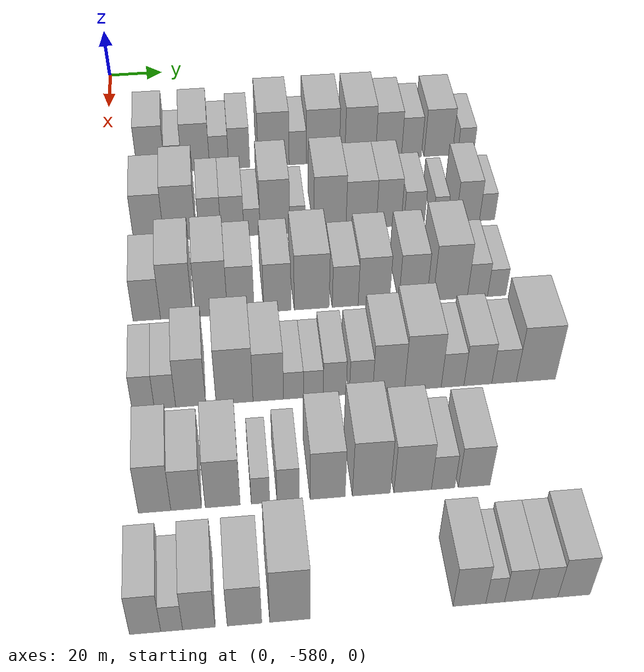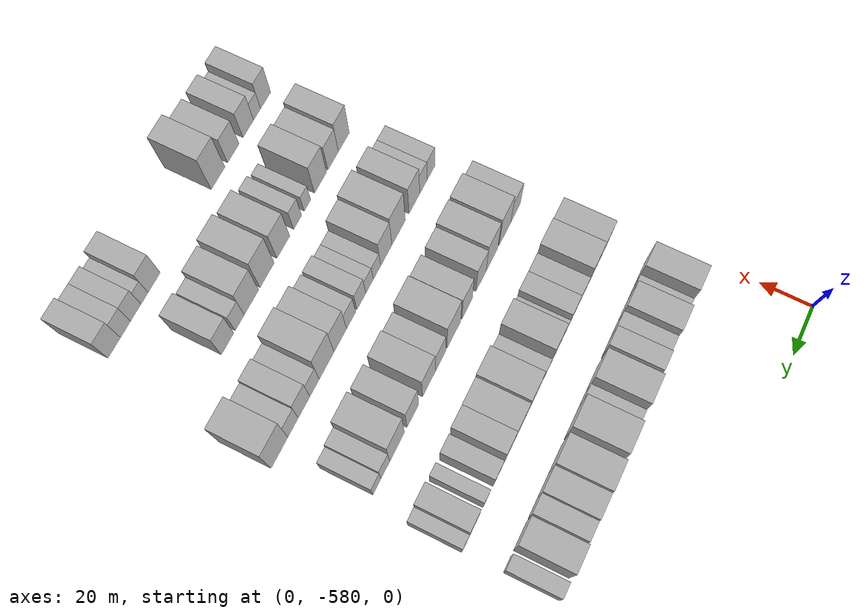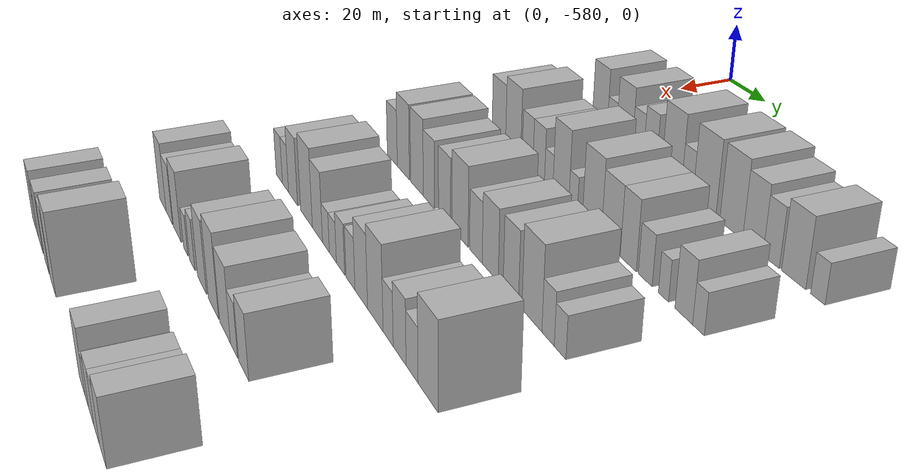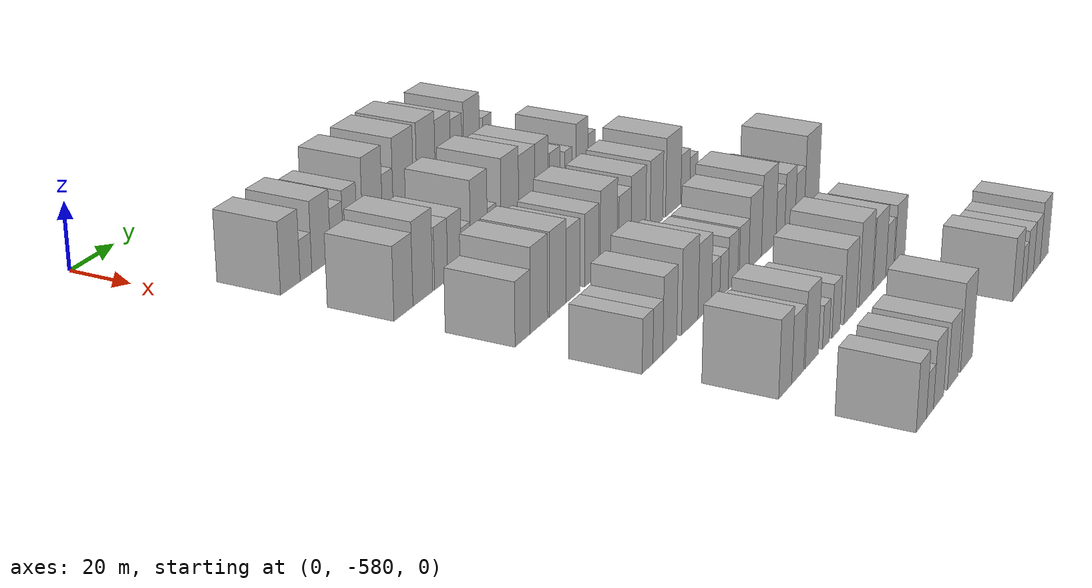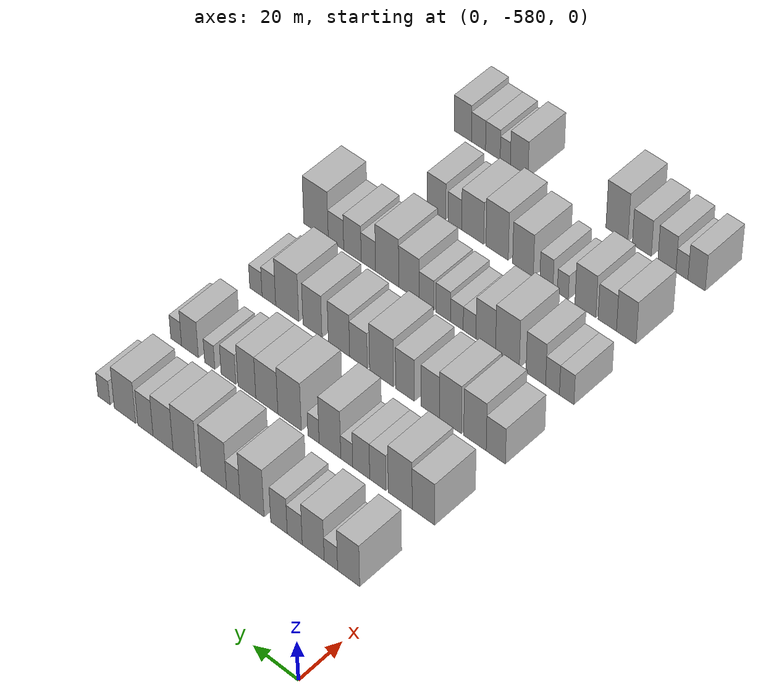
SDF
<sdf version="1.6">
 <world name="default">
  <model name="building_1">
   <static>1</static>
   <pose>50.0000 -564.1131 0 0.000000 0.000000 0.000000</pose>
   <link name="link">
    <pose>0 0 10.50 0 0 0</pose>
    <collision name="collision"><geometry><box><size>20.0000 9.7738 21.0000</size></box></geometry></collision>
    <visual name="visual">
     <cast_shadows>0</cast_shadows>
     <geometry><box><size>20.0000 9.7738 21.0000</size></box></geometry>
     <material>
      <script>
       <uri>model://HANNAS_wall/materials/scripts</uri>
       <uri>model://HANNAS_wall/materials/textures</uri>
       <name>vrc/HANNAS_wall</name>
      </script>
     </material>
    </visual>
   </link>
  </model>
  <model name="building_2">
   <static>1</static>
   <pose>50.0000 -556.2475 0 0.000000 0.000000 0.000000</pose>
   <link name="link">
    <pose>0 0 6.00 0 0 0</pose>
    <collision name="collision"><geometry><box><size>20.0000 5.9574 12.0000</size></box></geometry></collision>
    <visual name="visual">
     <cast_shadows>0</cast_shadows>
     <geometry><box><size>20.0000 5.9574 12.0000</size></box></geometry>
     <material>
      <script>
       <uri>model://HANNAS_wall/materials/scripts</uri>
       <uri>model://HANNAS_wall/materials/textures</uri>
       <name>vrc/HANNAS_wall</name>
      </script>
     </material>
    </visual>
   </link>
  </model>
  <model name="building_3">
   <static>1</static>
   <pose>50.0000 -548.3666 0 0.000000 0.000000 0.000000</pose>
   <link name="link">
    <pose>0 0 10.50 0 0 0</pose>
    <collision name="collision"><geometry><box><size>20.0000 9.8044 21.0000</size></box></geometry></collision>
    <visual name="visual">
     <cast_shadows>0</cast_shadows>
     <geometry><box><size>20.0000 9.8044 21.0000</size></box></geometry>
     <material>
      <script>
       <uri>model://HANNAS_wall/materials/scripts</uri>
       <uri>model://HANNAS_wall/materials/textures</uri>
       <name>vrc/HANNAS_wall</name>
      </script>
     </material>
    </visual>
   </link>
  </model>
  <model name="building_4">
   <static>1</static>
   <pose>50.0000 -540.1004 0 0.000000 0.000000 0.000000</pose>
   <link name="link">
    <pose>0 0 7.50 0 0 0</pose>
    <collision name="collision"><geometry><box><size>20.0000 6.7281 15.0000</size></box></geometry></collision>
    <visual name="visual">
     <cast_shadows>0</cast_shadows>
     <geometry><box><size>20.0000 6.7281 15.0000</size></box></geometry>
     <material>
      <script>
       <uri>model://HANNAS_wall/materials/scripts</uri>
       <uri>model://HANNAS_wall/materials/textures</uri>
       <name>vrc/HANNAS_wall</name>
      </script>
     </material>
    </visual>
   </link>
  </model>
  <model name="building_5">
   <static>1</static>
   <pose>50.0000 -532.9856 0 0.000000 0.000000 0.000000</pose>
   <link name="link">
    <pose>0 0 9.00 0 0 0</pose>
    <collision name="collision"><geometry><box><size>20.0000 7.5014 18.0000</size></box></geometry></collision>
    <visual name="visual">
     <cast_shadows>0</cast_shadows>
     <geometry><box><size>20.0000 7.5014 18.0000</size></box></geometry>
     <material>
      <script>
       <uri>model://HANNAS_wall/materials/scripts</uri>
       <uri>model://HANNAS_wall/materials/textures</uri>
       <name>vrc/HANNAS_wall</name>
      </script>
     </material>
    </visual>
   </link>
  </model>
  <model name="building_6">
   <static>1</static>
   <pose>50.0000 -520.7210 0 0.000000 0.000000 0.000000</pose>
   <link name="link">
    <pose>0 0 12.00 0 0 0</pose>
    <collision name="collision"><geometry><box><size>20.0000 11.0278 24.0000</size></box></geometry></collision>
    <visual name="visual">
     <cast_shadows>0</cast_shadows>
     <geometry><box><size>20.0000 11.0278 24.0000</size></box></geometry>
     <material>
      <script>
       <uri>model://HANNAS_wall/materials/scripts</uri>
       <uri>model://HANNAS_wall/materials/textures</uri>
       <name>vrc/HANNAS_wall</name>
      </script>
     </material>
    </visual>
   </link>
  </model>
  <model name="building_7">
   <static>1</static>
   <pose>50.0000 -512.1404 0 0.000000 0.000000 0.000000</pose>
   <link name="link">
    <pose>0 0 7.50 0 0 0</pose>
    <collision name="collision"><geometry><box><size>20.0000 6.1334 15.0000</size></box></geometry></collision>
    <visual name="visual">
     <cast_shadows>0</cast_shadows>
     <geometry><box><size>20.0000 6.1334 15.0000</size></box></geometry>
     <material>
      <script>
       <uri>model://HANNAS_wall/materials/scripts</uri>
       <uri>model://HANNAS_wall/materials/textures</uri>
       <name>vrc/HANNAS_wall</name>
      </script>
     </material>
    </visual>
   </link>
  </model>
  <model name="building_8">
   <static>1</static>
   <pose>50.0000 -503.1500 0 0.000000 0.000000 0.000000</pose>
   <link name="link">
    <pose>0 0 12.00 0 0 0</pose>
    <collision name="collision"><geometry><box><size>20.0000 11.8474 24.0000</size></box></geometry></collision>
    <visual name="visual">
     <cast_shadows>0</cast_shadows>
     <geometry><box><size>20.0000 11.8474 24.0000</size></box></geometry>
     <material>
      <script>
       <uri>model://HANNAS_wall/materials/scripts</uri>
       <uri>model://HANNAS_wall/materials/textures</uri>
       <name>vrc/HANNAS_wall</name>
      </script>
     </material>
    </visual>
   </link>
  </model>
  <model name="building_9">
   <static>1</static>
   <pose>50.0000 -489.6845 0 0.000000 0.000000 0.000000</pose>
   <link name="link">
    <pose>0 0 12.00 0 0 0</pose>
    <collision name="collision"><geometry><box><size>20.0000 11.0836 24.0000</size></box></geometry></collision>
    <visual name="visual">
     <cast_shadows>0</cast_shadows>
     <geometry><box><size>20.0000 11.0836 24.0000</size></box></geometry>
     <material>
      <script>
       <uri>model://HANNAS_wall/materials/scripts</uri>
       <uri>model://HANNAS_wall/materials/textures</uri>
       <name>vrc/HANNAS_wall</name>
      </script>
     </material>
    </visual>
   </link>
  </model>
  <model name="building_10">
   <static>1</static>
   <pose>50.0000 -479.4460 0 0.000000 0.000000 0.000000</pose>
   <link name="link">
    <pose>0 0 10.50 0 0 0</pose>
    <collision name="collision"><geometry><box><size>20.0000 9.3932 21.0000</size></box></geometry></collision>
    <visual name="visual">
     <cast_shadows>0</cast_shadows>
     <geometry><box><size>20.0000 9.3932 21.0000</size></box></geometry>
     <material>
      <script>
       <uri>model://HANNAS_wall/materials/scripts</uri>
       <uri>model://HANNAS_wall/materials/textures</uri>
       <name>vrc/HANNAS_wall</name>
      </script>
     </material>
    </visual>
   </link>
  </model>
  <model name="building_11">
   <static>1</static>
   <pose>50.0000 -471.1267 0 0.000000 0.000000 0.000000</pose>
   <link name="link">
    <pose>0 0 9.00 0 0 0</pose>
    <collision name="collision"><geometry><box><size>20.0000 7.2455 18.0000</size></box></geometry></collision>
    <visual name="visual">
     <cast_shadows>0</cast_shadows>
     <geometry><box><size>20.0000 7.2455 18.0000</size></box></geometry>
     <material>
      <script>
       <uri>model://HANNAS_wall/materials/scripts</uri>
       <uri>model://HANNAS_wall/materials/textures</uri>
       <name>vrc/HANNAS_wall</name>
      </script>
     </material>
    </visual>
   </link>
  </model>
  <model name="building_12">
   <static>1</static>
   <pose>50.0000 -461.3749 0 0.000000 0.000000 0.000000</pose>
   <link name="link">
    <pose>0 0 10.50 0 0 0</pose>
    <collision name="collision"><geometry><box><size>20.0000 10.2581 21.0000</size></box></geometry></collision>
    <visual name="visual">
     <cast_shadows>0</cast_shadows>
     <geometry><box><size>20.0000 10.2581 21.0000</size></box></geometry>
     <material>
      <script>
       <uri>model://HANNAS_wall/materials/scripts</uri>
       <uri>model://HANNAS_wall/materials/textures</uri>
       <name>vrc/HANNAS_wall</name>
      </script>
     </material>
    </visual>
   </link>
  </model>
  <model name="building_13">
   <static>1</static>
   <pose>50.0000 -451.3110 0 0.000000 0.000000 0.000000</pose>
   <link name="link">
    <pose>0 0 6.00 0 0 0</pose>
    <collision name="collision"><geometry><box><size>20.0000 5.8699 12.0000</size></box></geometry></collision>
    <visual name="visual">
     <cast_shadows>0</cast_shadows>
     <geometry><box><size>20.0000 5.8699 12.0000</size></box></geometry>
     <material>
      <script>
       <uri>model://HANNAS_wall/materials/scripts</uri>
       <uri>model://HANNAS_wall/materials/textures</uri>
       <name>vrc/HANNAS_wall</name>
      </script>
     </material>
    </visual>
   </link>
  </model>
  <model name="building_126">
   <static>1</static>
   <pose>85.0000 -564.9992 0 0.000000 0.000000 0.000000</pose>
   <link name="link">
    <pose>0 0 10.50 0 0 0</pose>
    <collision name="collision"><geometry><box><size>20.0000 10.0015 21.0000</size></box></geometry></collision>
    <visual name="visual">
     <cast_shadows>0</cast_shadows>
     <geometry><box><size>20.0000 10.0015 21.0000</size></box></geometry>
     <material>
      <script>
       <uri>model://HANNAS_wall/materials/scripts</uri>
       <uri>model://HANNAS_wall/materials/textures</uri>
       <name>vrc/HANNAS_wall</name>
      </script>
     </material>
    </visual>
   </link>
  </model>
  <model name="building_127">
   <static>1</static>
   <pose>85.0000 -554.6573 0 0.000000 0.000000 0.000000</pose>
   <link name="link">
    <pose>0 0 12.00 0 0 0</pose>
    <collision name="collision"><geometry><box><size>20.0000 10.6824 24.0000</size></box></geometry></collision>
    <visual name="visual">
     <cast_shadows>0</cast_shadows>
     <geometry><box><size>20.0000 10.6824 24.0000</size></box></geometry>
     <material>
      <script>
       <uri>model://HANNAS_wall/materials/scripts</uri>
       <uri>model://HANNAS_wall/materials/textures</uri>
       <name>vrc/HANNAS_wall</name>
      </script>
     </material>
    </visual>
   </link>
  </model>
  <model name="building_128">
   <static>1</static>
   <pose>85.0000 -544.6598 0 0.000000 0.000000 0.000000</pose>
   <link name="link">
    <pose>0 0 9.00 0 0 0</pose>
    <collision name="collision"><geometry><box><size>20.0000 7.3126 18.0000</size></box></geometry></collision>
    <visual name="visual">
     <cast_shadows>0</cast_shadows>
     <geometry><box><size>20.0000 7.3126 18.0000</size></box></geometry>
     <material>
      <script>
       <uri>model://HANNAS_wall/materials/scripts</uri>
       <uri>model://HANNAS_wall/materials/textures</uri>
       <name>vrc/HANNAS_wall</name>
      </script>
     </material>
    </visual>
   </link>
  </model>
  <model name="building_129">
   <static>1</static>
   <pose>85.0000 -537.1712 0 0.000000 0.000000 0.000000</pose>
   <link name="link">
    <pose>0 0 9.00 0 0 0</pose>
    <collision name="collision"><geometry><box><size>20.0000 7.6648 18.0000</size></box></geometry></collision>
    <visual name="visual">
     <cast_shadows>0</cast_shadows>
     <geometry><box><size>20.0000 7.6648 18.0000</size></box></geometry>
     <material>
      <script>
       <uri>model://HANNAS_wall/materials/scripts</uri>
       <uri>model://HANNAS_wall/materials/textures</uri>
       <name>vrc/HANNAS_wall</name>
      </script>
     </material>
    </visual>
   </link>
  </model>
  <model name="building_130">
   <static>1</static>
   <pose>85.0000 -530.6319 0 0.000000 0.000000 0.000000</pose>
   <link name="link">
    <pose>0 0 6.00 0 0 0</pose>
    <collision name="collision"><geometry><box><size>20.0000 5.4137 12.0000</size></box></geometry></collision>
    <visual name="visual">
     <cast_shadows>0</cast_shadows>
     <geometry><box><size>20.0000 5.4137 12.0000</size></box></geometry>
     <material>
      <script>
       <uri>model://HANNAS_wall/materials/scripts</uri>
       <uri>model://HANNAS_wall/materials/textures</uri>
       <name>vrc/HANNAS_wall</name>
      </script>
     </material>
    </visual>
   </link>
  </model>
  <model name="building_131">
   <static>1</static>
   <pose>85.0000 -522.9707 0 0.000000 0.000000 0.000000</pose>
   <link name="link">
    <pose>0 0 12.00 0 0 0</pose>
    <collision name="collision"><geometry><box><size>20.0000 9.9087 24.0000</size></box></geometry></collision>
    <visual name="visual">
     <cast_shadows>0</cast_shadows>
     <geometry><box><size>20.0000 9.9087 24.0000</size></box></geometry>
     <material>
      <script>
       <uri>model://HANNAS_wall/materials/scripts</uri>
       <uri>model://HANNAS_wall/materials/textures</uri>
       <name>vrc/HANNAS_wall</name>
      </script>
     </material>
    </visual>
   </link>
  </model>
  <model name="building_132">
   <static>1</static>
   <pose>85.0000 -515.4347 0 0.000000 0.000000 0.000000</pose>
   <link name="link">
    <pose>0 0 6.00 0 0 0</pose>
    <collision name="collision"><geometry><box><size>20.0000 5.1632 12.0000</size></box></geometry></collision>
    <visual name="visual">
     <cast_shadows>0</cast_shadows>
     <geometry><box><size>20.0000 5.1632 12.0000</size></box></geometry>
     <material>
      <script>
       <uri>model://HANNAS_wall/materials/scripts</uri>
       <uri>model://HANNAS_wall/materials/textures</uri>
       <name>vrc/HANNAS_wall</name>
      </script>
     </material>
    </visual>
   </link>
  </model>
  <model name="building_133">
   <static>1</static>
   <pose>85.0000 -504.4293 0 0.000000 0.000000 0.000000</pose>
   <link name="link">
    <pose>0 0 12.00 0 0 0</pose>
    <collision name="collision"><geometry><box><size>20.0000 10.8477 24.0000</size></box></geometry></collision>
    <visual name="visual">
     <cast_shadows>0</cast_shadows>
     <geometry><box><size>20.0000 10.8477 24.0000</size></box></geometry>
     <material>
      <script>
       <uri>model://HANNAS_wall/materials/scripts</uri>
       <uri>model://HANNAS_wall/materials/textures</uri>
       <name>vrc/HANNAS_wall</name>
      </script>
     </material>
    </visual>
   </link>
  </model>
  <model name="building_134">
   <static>1</static>
   <pose>85.0000 -493.8446 0 0.000000 0.000000 0.000000</pose>
   <link name="link">
    <pose>0 0 10.50 0 0 0</pose>
    <collision name="collision"><geometry><box><size>20.0000 10.3215 21.0000</size></box></geometry></collision>
    <visual name="visual">
     <cast_shadows>0</cast_shadows>
     <geometry><box><size>20.0000 10.3215 21.0000</size></box></geometry>
     <material>
      <script>
       <uri>model://HANNAS_wall/materials/scripts</uri>
       <uri>model://HANNAS_wall/materials/textures</uri>
       <name>vrc/HANNAS_wall</name>
      </script>
     </material>
    </visual>
   </link>
  </model>
  <model name="building_135">
   <static>1</static>
   <pose>85.0000 -484.4833 0 0.000000 0.000000 0.000000</pose>
   <link name="link">
    <pose>0 0 10.50 0 0 0</pose>
    <collision name="collision"><geometry><box><size>20.0000 8.4012 21.0000</size></box></geometry></collision>
    <visual name="visual">
     <cast_shadows>0</cast_shadows>
     <geometry><box><size>20.0000 8.4012 21.0000</size></box></geometry>
     <material>
      <script>
       <uri>model://HANNAS_wall/materials/scripts</uri>
       <uri>model://HANNAS_wall/materials/textures</uri>
       <name>vrc/HANNAS_wall</name>
      </script>
     </material>
    </visual>
   </link>
  </model>
  <model name="building_136">
   <static>1</static>
   <pose>85.0000 -475.7930 0 0.000000 0.000000 0.000000</pose>
   <link name="link">
    <pose>0 0 7.50 0 0 0</pose>
    <collision name="collision"><geometry><box><size>20.0000 6.9794 15.0000</size></box></geometry></collision>
    <visual name="visual">
     <cast_shadows>0</cast_shadows>
     <geometry><box><size>20.0000 6.9794 15.0000</size></box></geometry>
     <material>
      <script>
       <uri>model://HANNAS_wall/materials/scripts</uri>
       <uri>model://HANNAS_wall/materials/textures</uri>
       <name>vrc/HANNAS_wall</name>
      </script>
     </material>
    </visual>
   </link>
  </model>
  <model name="building_137">
   <static>1</static>
   <pose>85.0000 -466.8746 0 0.000000 0.000000 0.000000</pose>
   <link name="link">
    <pose>0 0 6.00 0 0 0</pose>
    <collision name="collision"><geometry><box><size>20.0000 4.8574 12.0000</size></box></geometry></collision>
    <visual name="visual">
     <cast_shadows>0</cast_shadows>
     <geometry><box><size>20.0000 4.8574 12.0000</size></box></geometry>
     <material>
      <script>
       <uri>model://HANNAS_wall/materials/scripts</uri>
       <uri>model://HANNAS_wall/materials/textures</uri>
       <name>vrc/HANNAS_wall</name>
      </script>
     </material>
    </visual>
   </link>
  </model>
  <model name="building_138">
   <static>1</static>
   <pose>85.0000 -457.4121 0 0.000000 0.000000 0.000000</pose>
   <link name="link">
    <pose>0 0 9.00 0 0 0</pose>
    <collision name="collision"><geometry><box><size>20.0000 8.0675 18.0000</size></box></geometry></collision>
    <visual name="visual">
     <cast_shadows>0</cast_shadows>
     <geometry><box><size>20.0000 8.0675 18.0000</size></box></geometry>
     <material>
      <script>
       <uri>model://HANNAS_wall/materials/scripts</uri>
       <uri>model://HANNAS_wall/materials/textures</uri>
       <name>vrc/HANNAS_wall</name>
      </script>
     </material>
    </visual>
   </link>
  </model>
  <model name="building_139">
   <static>1</static>
   <pose>85.0000 -450.7719 0 0.000000 0.000000 0.000000</pose>
   <link name="link">
    <pose>0 0 6.00 0 0 0</pose>
    <collision name="collision"><geometry><box><size>20.0000 5.2129 12.0000</size></box></geometry></collision>
    <visual name="visual">
     <cast_shadows>0</cast_shadows>
     <geometry><box><size>20.0000 5.2129 12.0000</size></box></geometry>
     <material>
      <script>
       <uri>model://HANNAS_wall/materials/scripts</uri>
       <uri>model://HANNAS_wall/materials/textures</uri>
       <name>vrc/HANNAS_wall</name>
      </script>
     </material>
    </visual>
   </link>
  </model>
  <model name="building_251">
   <static>1</static>
   <pose>120.0000 -565.7389 0 0.000000 0.000000 0.000000</pose>
   <link name="link">
    <pose>0 0 9.00 0 0 0</pose>
    <collision name="collision"><geometry><box><size>20.0000 8.5222 18.0000</size></box></geometry></collision>
    <visual name="visual">
     <cast_shadows>0</cast_shadows>
     <geometry><box><size>20.0000 8.5222 18.0000</size></box></geometry>
     <material>
      <script>
       <uri>model://HANNAS_wall/materials/scripts</uri>
       <uri>model://HANNAS_wall/materials/textures</uri>
       <name>vrc/HANNAS_wall</name>
      </script>
     </material>
    </visual>
   </link>
  </model>
  <model name="building_252">
   <static>1</static>
   <pose>120.0000 -556.4605 0 0.000000 0.000000 0.000000</pose>
   <link name="link">
    <pose>0 0 12.00 0 0 0</pose>
    <collision name="collision"><geometry><box><size>20.0000 10.0346 24.0000</size></box></geometry></collision>
    <visual name="visual">
     <cast_shadows>0</cast_shadows>
     <geometry><box><size>20.0000 10.0346 24.0000</size></box></geometry>
     <material>
      <script>
       <uri>model://HANNAS_wall/materials/scripts</uri>
       <uri>model://HANNAS_wall/materials/textures</uri>
       <name>vrc/HANNAS_wall</name>
      </script>
     </material>
    </visual>
   </link>
  </model>
  <model name="building_253">
   <static>1</static>
   <pose>120.0000 -545.5049 0 0.000000 0.000000 0.000000</pose>
   <link name="link">
    <pose>0 0 12.00 0 0 0</pose>
    <collision name="collision"><geometry><box><size>20.0000 9.8765 24.0000</size></box></geometry></collision>
    <visual name="visual">
     <cast_shadows>0</cast_shadows>
     <geometry><box><size>20.0000 9.8765 24.0000</size></box></geometry>
     <material>
      <script>
       <uri>model://HANNAS_wall/materials/scripts</uri>
       <uri>model://HANNAS_wall/materials/textures</uri>
       <name>vrc/HANNAS_wall</name>
      </script>
     </material>
    </visual>
   </link>
  </model>
  <model name="building_254">
   <static>1</static>
   <pose>120.0000 -536.3605 0 0.000000 0.000000 0.000000</pose>
   <link name="link">
    <pose>0 0 10.50 0 0 0</pose>
    <collision name="collision"><geometry><box><size>20.0000 8.4123 21.0000</size></box></geometry></collision>
    <visual name="visual">
     <cast_shadows>0</cast_shadows>
     <geometry><box><size>20.0000 8.4123 21.0000</size></box></geometry>
     <material>
      <script>
       <uri>model://HANNAS_wall/materials/scripts</uri>
       <uri>model://HANNAS_wall/materials/textures</uri>
       <name>vrc/HANNAS_wall</name>
      </script>
     </material>
    </visual>
   </link>
  </model>
  <model name="building_255">
   <static>1</static>
   <pose>120.0000 -524.8648 0 0.000000 0.000000 0.000000</pose>
   <link name="link">
    <pose>0 0 10.50 0 0 0</pose>
    <collision name="collision"><geometry><box><size>20.0000 8.5791 21.0000</size></box></geometry></collision>
    <visual name="visual">
     <cast_shadows>0</cast_shadows>
     <geometry><box><size>20.0000 8.5791 21.0000</size></box></geometry>
     <material>
      <script>
       <uri>model://HANNAS_wall/materials/scripts</uri>
       <uri>model://HANNAS_wall/materials/textures</uri>
       <name>vrc/HANNAS_wall</name>
      </script>
     </material>
    </visual>
   </link>
  </model>
  <model name="building_256">
   <static>1</static>
   <pose>120.0000 -514.0592 0 0.000000 0.000000 0.000000</pose>
   <link name="link">
    <pose>0 0 12.00 0 0 0</pose>
    <collision name="collision"><geometry><box><size>20.0000 11.0322 24.0000</size></box></geometry></collision>
    <visual name="visual">
     <cast_shadows>0</cast_shadows>
     <geometry><box><size>20.0000 11.0322 24.0000</size></box></geometry>
     <material>
      <script>
       <uri>model://HANNAS_wall/materials/scripts</uri>
       <uri>model://HANNAS_wall/materials/textures</uri>
       <name>vrc/HANNAS_wall</name>
      </script>
     </material>
    </visual>
   </link>
  </model>
  <model name="building_257">
   <static>1</static>
   <pose>120.0000 -503.4317 0 0.000000 0.000000 0.000000</pose>
   <link name="link">
    <pose>0 0 9.00 0 0 0</pose>
    <collision name="collision"><geometry><box><size>20.0000 8.2226 18.0000</size></box></geometry></collision>
    <visual name="visual">
     <cast_shadows>0</cast_shadows>
     <geometry><box><size>20.0000 8.2226 18.0000</size></box></geometry>
     <material>
      <script>
       <uri>model://HANNAS_wall/materials/scripts</uri>
       <uri>model://HANNAS_wall/materials/textures</uri>
       <name>vrc/HANNAS_wall</name>
      </script>
     </material>
    </visual>
   </link>
  </model>
  <model name="building_258">
   <static>1</static>
   <pose>120.0000 -494.3354 0 0.000000 0.000000 0.000000</pose>
   <link name="link">
    <pose>0 0 10.50 0 0 0</pose>
    <collision name="collision"><geometry><box><size>20.0000 9.9700 21.0000</size></box></geometry></collision>
    <visual name="visual">
     <cast_shadows>0</cast_shadows>
     <geometry><box><size>20.0000 9.9700 21.0000</size></box></geometry>
     <material>
      <script>
       <uri>model://HANNAS_wall/materials/scripts</uri>
       <uri>model://HANNAS_wall/materials/textures</uri>
       <name>vrc/HANNAS_wall</name>
      </script>
     </material>
    </visual>
   </link>
  </model>
  <model name="building_259">
   <static>1</static>
   <pose>120.0000 -481.8761 0 0.000000 0.000000 0.000000</pose>
   <link name="link">
    <pose>0 0 10.50 0 0 0</pose>
    <collision name="collision"><geometry><box><size>20.0000 8.9484 21.0000</size></box></geometry></collision>
    <visual name="visual">
     <cast_shadows>0</cast_shadows>
     <geometry><box><size>20.0000 8.9484 21.0000</size></box></geometry>
     <material>
      <script>
       <uri>model://HANNAS_wall/materials/scripts</uri>
       <uri>model://HANNAS_wall/materials/textures</uri>
       <name>vrc/HANNAS_wall</name>
      </script>
     </material>
    </visual>
   </link>
  </model>
  <model name="building_260">
   <static>1</static>
   <pose>120.0000 -469.8994 0 0.000000 0.000000 0.000000</pose>
   <link name="link">
    <pose>0 0 12.00 0 0 0</pose>
    <collision name="collision"><geometry><box><size>20.0000 11.0050 24.0000</size></box></geometry></collision>
    <visual name="visual">
     <cast_shadows>0</cast_shadows>
     <geometry><box><size>20.0000 11.0050 24.0000</size></box></geometry>
     <material>
      <script>
       <uri>model://HANNAS_wall/materials/scripts</uri>
       <uri>model://HANNAS_wall/materials/textures</uri>
       <name>vrc/HANNAS_wall</name>
      </script>
     </material>
    </visual>
   </link>
  </model>
  <model name="building_261">
   <static>1</static>
   <pose>120.0000 -461.1266 0 0.000000 0.000000 0.000000</pose>
   <link name="link">
    <pose>0 0 7.50 0 0 0</pose>
    <collision name="collision"><geometry><box><size>20.0000 6.5408 15.0000</size></box></geometry></collision>
    <visual name="visual">
     <cast_shadows>0</cast_shadows>
     <geometry><box><size>20.0000 6.5408 15.0000</size></box></geometry>
     <material>
      <script>
       <uri>model://HANNAS_wall/materials/scripts</uri>
       <uri>model://HANNAS_wall/materials/textures</uri>
       <name>vrc/HANNAS_wall</name>
      </script>
     </material>
    </visual>
   </link>
  </model>
  <model name="building_262">
   <static>1</static>
   <pose>120.0000 -454.8951 0 0.000000 0.000000 0.000000</pose>
   <link name="link">
    <pose>0 0 6.00 0 0 0</pose>
    <collision name="collision"><geometry><box><size>20.0000 5.9221 12.0000</size></box></geometry></collision>
    <visual name="visual">
     <cast_shadows>0</cast_shadows>
     <geometry><box><size>20.0000 5.9221 12.0000</size></box></geometry>
     <material>
      <script>
       <uri>model://HANNAS_wall/materials/scripts</uri>
       <uri>model://HANNAS_wall/materials/textures</uri>
       <name>vrc/HANNAS_wall</name>
      </script>
     </material>
    </visual>
   </link>
  </model>
  <model name="building_382">
   <static>1</static>
   <pose>155.0000 -566.7696 0 0.000000 0.000000 0.000000</pose>
   <link name="link">
    <pose>0 0 7.50 0 0 0</pose>
    <collision name="collision"><geometry><box><size>20.0000 6.4609 15.0000</size></box></geometry></collision>
    <visual name="visual">
     <cast_shadows>0</cast_shadows>
     <geometry><box><size>20.0000 6.4609 15.0000</size></box></geometry>
     <material>
      <script>
       <uri>model://HANNAS_wall/materials/scripts</uri>
       <uri>model://HANNAS_wall/materials/textures</uri>
       <name>vrc/HANNAS_wall</name>
      </script>
     </material>
    </visual>
   </link>
  </model>
  <model name="building_383">
   <static>1</static>
   <pose>155.0000 -560.4409 0 0.000000 0.000000 0.000000</pose>
   <link name="link">
    <pose>0 0 7.50 0 0 0</pose>
    <collision name="collision"><geometry><box><size>20.0000 6.1965 15.0000</size></box></geometry></collision>
    <visual name="visual">
     <cast_shadows>0</cast_shadows>
     <geometry><box><size>20.0000 6.1965 15.0000</size></box></geometry>
     <material>
      <script>
       <uri>model://HANNAS_wall/materials/scripts</uri>
       <uri>model://HANNAS_wall/materials/textures</uri>
       <name>vrc/HANNAS_wall</name>
      </script>
     </material>
    </visual>
   </link>
  </model>
  <model name="building_384">
   <static>1</static>
   <pose>155.0000 -552.9524 0 0.000000 0.000000 0.000000</pose>
   <link name="link">
    <pose>0 0 10.50 0 0 0</pose>
    <collision name="collision"><geometry><box><size>20.0000 8.7805 21.0000</size></box></geometry></collision>
    <visual name="visual">
     <cast_shadows>0</cast_shadows>
     <geometry><box><size>20.0000 8.7805 21.0000</size></box></geometry>
     <material>
      <script>
       <uri>model://HANNAS_wall/materials/scripts</uri>
       <uri>model://HANNAS_wall/materials/textures</uri>
       <name>vrc/HANNAS_wall</name>
      </script>
     </material>
    </visual>
   </link>
  </model>
  <model name="building_385">
   <static>1</static>
   <pose>155.0000 -540.1647 0 0.000000 0.000000 0.000000</pose>
   <link name="link">
    <pose>0 0 12.00 0 0 0</pose>
    <collision name="collision"><geometry><box><size>20.0000 10.7949 24.0000</size></box></geometry></collision>
    <visual name="visual">
     <cast_shadows>0</cast_shadows>
     <geometry><box><size>20.0000 10.7949 24.0000</size></box></geometry>
     <material>
      <script>
       <uri>model://HANNAS_wall/materials/scripts</uri>
       <uri>model://HANNAS_wall/materials/textures</uri>
       <name>vrc/HANNAS_wall</name>
      </script>
     </material>
    </visual>
   </link>
  </model>
  <model name="building_386">
   <static>1</static>
   <pose>155.0000 -530.2913 0 0.000000 0.000000 0.000000</pose>
   <link name="link">
    <pose>0 0 10.50 0 0 0</pose>
    <collision name="collision"><geometry><box><size>20.0000 8.9519 21.0000</size></box></geometry></collision>
    <visual name="visual">
     <cast_shadows>0</cast_shadows>
     <geometry><box><size>20.0000 8.9519 21.0000</size></box></geometry>
     <material>
      <script>
       <uri>model://HANNAS_wall/materials/scripts</uri>
       <uri>model://HANNAS_wall/materials/textures</uri>
       <name>vrc/HANNAS_wall</name>
      </script>
     </material>
    </visual>
   </link>
  </model>
  <model name="building_387">
   <static>1</static>
   <pose>155.0000 -522.8904 0 0.000000 0.000000 0.000000</pose>
   <link name="link">
    <pose>0 0 6.00 0 0 0</pose>
    <collision name="collision"><geometry><box><size>20.0000 5.8498 12.0000</size></box></geometry></collision>
    <visual name="visual">
     <cast_shadows>0</cast_shadows>
     <geometry><box><size>20.0000 5.8498 12.0000</size></box></geometry>
     <material>
      <script>
       <uri>model://HANNAS_wall/materials/scripts</uri>
       <uri>model://HANNAS_wall/materials/textures</uri>
       <name>vrc/HANNAS_wall</name>
      </script>
     </material>
    </visual>
   </link>
  </model>
  <model name="building_388">
   <static>1</static>
   <pose>155.0000 -517.0592 0 0.000000 0.000000 0.000000</pose>
   <link name="link">
    <pose>0 0 6.00 0 0 0</pose>
    <collision name="collision"><geometry><box><size>20.0000 5.8126 12.0000</size></box></geometry></collision>
    <visual name="visual">
     <cast_shadows>0</cast_shadows>
     <geometry><box><size>20.0000 5.8126 12.0000</size></box></geometry>
     <material>
      <script>
       <uri>model://HANNAS_wall/materials/scripts</uri>
       <uri>model://HANNAS_wall/materials/textures</uri>
       <name>vrc/HANNAS_wall</name>
      </script>
     </material>
    </visual>
   </link>
  </model>
  <model name="building_389">
   <static>1</static>
   <pose>155.0000 -510.7680 0 0.000000 0.000000 0.000000</pose>
   <link name="link">
    <pose>0 0 7.50 0 0 0</pose>
    <collision name="collision"><geometry><box><size>20.0000 6.7700 15.0000</size></box></geometry></collision>
    <visual name="visual">
     <cast_shadows>0</cast_shadows>
     <geometry><box><size>20.0000 6.7700 15.0000</size></box></geometry>
     <material>
      <script>
       <uri>model://HANNAS_wall/materials/scripts</uri>
       <uri>model://HANNAS_wall/materials/textures</uri>
       <name>vrc/HANNAS_wall</name>
      </script>
     </material>
    </visual>
   </link>
  </model>
  <model name="building_390">
   <static>1</static>
   <pose>155.0000 -502.9184 0 0.000000 0.000000 0.000000</pose>
   <link name="link">
    <pose>0 0 7.50 0 0 0</pose>
    <collision name="collision"><geometry><box><size>20.0000 6.9292 15.0000</size></box></geometry></collision>
    <visual name="visual">
     <cast_shadows>0</cast_shadows>
     <geometry><box><size>20.0000 6.9292 15.0000</size></box></geometry>
     <material>
      <script>
       <uri>model://HANNAS_wall/materials/scripts</uri>
       <uri>model://HANNAS_wall/materials/textures</uri>
       <name>vrc/HANNAS_wall</name>
      </script>
     </material>
    </visual>
   </link>
  </model>
  <model name="building_391">
   <static>1</static>
   <pose>155.0000 -494.7253 0 0.000000 0.000000 0.000000</pose>
   <link name="link">
    <pose>0 0 10.50 0 0 0</pose>
    <collision name="collision"><geometry><box><size>20.0000 9.4570 21.0000</size></box></geometry></collision>
    <visual name="visual">
     <cast_shadows>0</cast_shadows>
     <geometry><box><size>20.0000 9.4570 21.0000</size></box></geometry>
     <material>
      <script>
       <uri>model://HANNAS_wall/materials/scripts</uri>
       <uri>model://HANNAS_wall/materials/textures</uri>
       <name>vrc/HANNAS_wall</name>
      </script>
     </material>
    </visual>
   </link>
  </model>
  <model name="building_392">
   <static>1</static>
   <pose>155.0000 -484.5177 0 0.000000 0.000000 0.000000</pose>
   <link name="link">
    <pose>0 0 12.00 0 0 0</pose>
    <collision name="collision"><geometry><box><size>20.0000 10.9581 24.0000</size></box></geometry></collision>
    <visual name="visual">
     <cast_shadows>0</cast_shadows>
     <geometry><box><size>20.0000 10.9581 24.0000</size></box></geometry>
     <material>
      <script>
       <uri>model://HANNAS_wall/materials/scripts</uri>
       <uri>model://HANNAS_wall/materials/textures</uri>
       <name>vrc/HANNAS_wall</name>
      </script>
     </material>
    </visual>
   </link>
  </model>
  <model name="building_393">
   <static>1</static>
   <pose>155.0000 -475.6195 0 0.000000 0.000000 0.000000</pose>
   <link name="link">
    <pose>0 0 7.50 0 0 0</pose>
    <collision name="collision"><geometry><box><size>20.0000 6.8383 15.0000</size></box></geometry></collision>
    <visual name="visual">
     <cast_shadows>0</cast_shadows>
     <geometry><box><size>20.0000 6.8383 15.0000</size></box></geometry>
     <material>
      <script>
       <uri>model://HANNAS_wall/materials/scripts</uri>
       <uri>model://HANNAS_wall/materials/textures</uri>
       <name>vrc/HANNAS_wall</name>
      </script>
     </material>
    </visual>
   </link>
  </model>
  <model name="building_394">
   <static>1</static>
   <pose>155.0000 -468.0209 0 0.000000 0.000000 0.000000</pose>
   <link name="link">
    <pose>0 0 9.00 0 0 0</pose>
    <collision name="collision"><geometry><box><size>20.0000 8.3589 18.0000</size></box></geometry></collision>
    <visual name="visual">
     <cast_shadows>0</cast_shadows>
     <geometry><box><size>20.0000 8.3589 18.0000</size></box></geometry>
     <material>
      <script>
       <uri>model://HANNAS_wall/materials/scripts</uri>
       <uri>model://HANNAS_wall/materials/textures</uri>
       <name>vrc/HANNAS_wall</name>
      </script>
     </material>
    </visual>
   </link>
  </model>
  <model name="building_395">
   <static>1</static>
   <pose>155.0000 -460.1365 0 0.000000 0.000000 0.000000</pose>
   <link name="link">
    <pose>0 0 7.50 0 0 0</pose>
    <collision name="collision"><geometry><box><size>20.0000 7.4099 15.0000</size></box></geometry></collision>
    <visual name="visual">
     <cast_shadows>0</cast_shadows>
     <geometry><box><size>20.0000 7.4099 15.0000</size></box></geometry>
     <material>
      <script>
       <uri>model://HANNAS_wall/materials/scripts</uri>
       <uri>model://HANNAS_wall/materials/textures</uri>
       <name>vrc/HANNAS_wall</name>
      </script>
     </material>
    </visual>
   </link>
  </model>
  <model name="building_396">
   <static>1</static>
   <pose>155.0000 -450.5178 0 0.000000 0.000000 0.000000</pose>
   <link name="link">
    <pose>0 0 12.00 0 0 0</pose>
    <collision name="collision"><geometry><box><size>20.0000 11.8275 24.0000</size></box></geometry></collision>
    <visual name="visual">
     <cast_shadows>0</cast_shadows>
     <geometry><box><size>20.0000 11.8275 24.0000</size></box></geometry>
     <material>
      <script>
       <uri>model://HANNAS_wall/materials/scripts</uri>
       <uri>model://HANNAS_wall/materials/textures</uri>
       <name>vrc/HANNAS_wall</name>
      </script>
     </material>
    </visual>
   </link>
  </model>
  <model name="building_502">
   <static>1</static>
   <pose>190.0000 -563.6203 0 0.000000 0.000000 0.000000</pose>
   <link name="link">
    <pose>0 0 10.50 0 0 0</pose>
    <collision name="collision"><geometry><box><size>20.0000 8.7594 21.0000</size></box></geometry></collision>
    <visual name="visual">
     <cast_shadows>0</cast_shadows>
     <geometry><box><size>20.0000 8.7594 21.0000</size></box></geometry>
     <material>
      <script>
       <uri>model://HANNAS_wall/materials/scripts</uri>
       <uri>model://HANNAS_wall/materials/textures</uri>
       <name>vrc/HANNAS_wall</name>
      </script>
     </material>
    </visual>
   </link>
  </model>
  <model name="building_503">
   <static>1</static>
   <pose>190.0000 -555.0942 0 0.000000 0.000000 0.000000</pose>
   <link name="link">
    <pose>0 0 9.00 0 0 0</pose>
    <collision name="collision"><geometry><box><size>20.0000 8.2929 18.0000</size></box></geometry></collision>
    <visual name="visual">
     <cast_shadows>0</cast_shadows>
     <geometry><box><size>20.0000 8.2929 18.0000</size></box></geometry>
     <material>
      <script>
       <uri>model://HANNAS_wall/materials/scripts</uri>
       <uri>model://HANNAS_wall/materials/textures</uri>
       <name>vrc/HANNAS_wall</name>
      </script>
     </material>
    </visual>
   </link>
  </model>
  <model name="building_504">
   <static>1</static>
   <pose>190.0000 -545.2086 0 0.000000 0.000000 0.000000</pose>
   <link name="link">
    <pose>0 0 10.50 0 0 0</pose>
    <collision name="collision"><geometry><box><size>20.0000 9.4783 21.0000</size></box></geometry></collision>
    <visual name="visual">
     <cast_shadows>0</cast_shadows>
     <geometry><box><size>20.0000 9.4783 21.0000</size></box></geometry>
     <material>
      <script>
       <uri>model://HANNAS_wall/materials/scripts</uri>
       <uri>model://HANNAS_wall/materials/textures</uri>
       <name>vrc/HANNAS_wall</name>
      </script>
     </material>
    </visual>
   </link>
  </model>
  <model name="building_505">
   <static>1</static>
   <pose>190.0000 -534.9641 0 0.000000 0.000000 0.000000</pose>
   <link name="link">
    <pose>0 0 6.00 0 0 0</pose>
    <collision name="collision"><geometry><box><size>20.0000 5.0105 12.0000</size></box></geometry></collision>
    <visual name="visual">
     <cast_shadows>0</cast_shadows>
     <geometry><box><size>20.0000 5.0105 12.0000</size></box></geometry>
     <material>
      <script>
       <uri>model://HANNAS_wall/materials/scripts</uri>
       <uri>model://HANNAS_wall/materials/textures</uri>
       <name>vrc/HANNAS_wall</name>
      </script>
     </material>
    </visual>
   </link>
  </model>
  <model name="building_506">
   <static>1</static>
   <pose>190.0000 -527.4440 0 0.000000 0.000000 0.000000</pose>
   <link name="link">
    <pose>0 0 7.50 0 0 0</pose>
    <collision name="collision"><geometry><box><size>20.0000 6.0297 15.0000</size></box></geometry></collision>
    <visual name="visual">
     <cast_shadows>0</cast_shadows>
     <geometry><box><size>20.0000 6.0297 15.0000</size></box></geometry>
     <material>
      <script>
       <uri>model://HANNAS_wall/materials/scripts</uri>
       <uri>model://HANNAS_wall/materials/textures</uri>
       <name>vrc/HANNAS_wall</name>
      </script>
     </material>
    </visual>
   </link>
  </model>
  <model name="building_507">
   <static>1</static>
   <pose>190.0000 -516.6324 0 0.000000 0.000000 0.000000</pose>
   <link name="link">
    <pose>0 0 10.50 0 0 0</pose>
    <collision name="collision"><geometry><box><size>20.0000 9.5936 21.0000</size></box></geometry></collision>
    <visual name="visual">
     <cast_shadows>0</cast_shadows>
     <geometry><box><size>20.0000 9.5936 21.0000</size></box></geometry>
     <material>
      <script>
       <uri>model://HANNAS_wall/materials/scripts</uri>
       <uri>model://HANNAS_wall/materials/textures</uri>
       <name>vrc/HANNAS_wall</name>
      </script>
     </material>
    </visual>
   </link>
  </model>
  <model name="building_508">
   <static>1</static>
   <pose>190.0000 -504.6116 0 0.000000 0.000000 0.000000</pose>
   <link name="link">
    <pose>0 0 12.00 0 0 0</pose>
    <collision name="collision"><geometry><box><size>20.0000 10.4481 24.0000</size></box></geometry></collision>
    <visual name="visual">
     <cast_shadows>0</cast_shadows>
     <geometry><box><size>20.0000 10.4481 24.0000</size></box></geometry>
     <material>
      <script>
       <uri>model://HANNAS_wall/materials/scripts</uri>
       <uri>model://HANNAS_wall/materials/textures</uri>
       <name>vrc/HANNAS_wall</name>
      </script>
     </material>
    </visual>
   </link>
  </model>
  <model name="building_509">
   <static>1</static>
   <pose>190.0000 -493.1963 0 0.000000 0.000000 0.000000</pose>
   <link name="link">
    <pose>0 0 10.50 0 0 0</pose>
    <collision name="collision"><geometry><box><size>20.0000 10.3825 21.0000</size></box></geometry></collision>
    <visual name="visual">
     <cast_shadows>0</cast_shadows>
     <geometry><box><size>20.0000 10.3825 21.0000</size></box></geometry>
     <material>
      <script>
       <uri>model://HANNAS_wall/materials/scripts</uri>
       <uri>model://HANNAS_wall/materials/textures</uri>
       <name>vrc/HANNAS_wall</name>
      </script>
     </material>
    </visual>
   </link>
  </model>
  <model name="building_510">
   <static>1</static>
   <pose>190.0000 -484.7559 0 0.000000 0.000000 0.000000</pose>
   <link name="link">
    <pose>0 0 7.50 0 0 0</pose>
    <collision name="collision"><geometry><box><size>20.0000 6.4981 15.0000</size></box></geometry></collision>
    <visual name="visual">
     <cast_shadows>0</cast_shadows>
     <geometry><box><size>20.0000 6.4981 15.0000</size></box></geometry>
     <material>
      <script>
       <uri>model://HANNAS_wall/materials/scripts</uri>
       <uri>model://HANNAS_wall/materials/textures</uri>
       <name>vrc/HANNAS_wall</name>
      </script>
     </material>
    </visual>
   </link>
  </model>
  <model name="building_511">
   <static>1</static>
   <pose>190.0000 -476.0926 0 0.000000 0.000000 0.000000</pose>
   <link name="link">
    <pose>0 0 9.00 0 0 0</pose>
    <collision name="collision"><geometry><box><size>20.0000 8.8286 18.0000</size></box></geometry></collision>
    <visual name="visual">
     <cast_shadows>0</cast_shadows>
     <geometry><box><size>20.0000 8.8286 18.0000</size></box></geometry>
     <material>
      <script>
       <uri>model://HANNAS_wall/materials/scripts</uri>
       <uri>model://HANNAS_wall/materials/textures</uri>
       <name>vrc/HANNAS_wall</name>
      </script>
     </material>
    </visual>
   </link>
  </model>
  <model name="building_622">
   <static>1</static>
   <pose>225.0000 -566.1172 0 0.000000 0.000000 0.000000</pose>
   <link name="link">
    <pose>0 0 9.00 0 0 0</pose>
    <collision name="collision"><geometry><box><size>20.0000 7.7657 18.0000</size></box></geometry></collision>
    <visual name="visual">
     <cast_shadows>0</cast_shadows>
     <geometry><box><size>20.0000 7.7657 18.0000</size></box></geometry>
     <material>
      <script>
       <uri>model://HANNAS_wall/materials/scripts</uri>
       <uri>model://HANNAS_wall/materials/textures</uri>
       <name>vrc/HANNAS_wall</name>
      </script>
     </material>
    </visual>
   </link>
  </model>
  <model name="building_623">
   <static>1</static>
   <pose>225.0000 -559.5286 0 0.000000 0.000000 0.000000</pose>
   <link name="link">
    <pose>0 0 6.00 0 0 0</pose>
    <collision name="collision"><geometry><box><size>20.0000 5.4115 12.0000</size></box></geometry></collision>
    <visual name="visual">
     <cast_shadows>0</cast_shadows>
     <geometry><box><size>20.0000 5.4115 12.0000</size></box></geometry>
     <material>
      <script>
       <uri>model://HANNAS_wall/materials/scripts</uri>
       <uri>model://HANNAS_wall/materials/textures</uri>
       <name>vrc/HANNAS_wall</name>
      </script>
     </material>
    </visual>
   </link>
  </model>
  <model name="building_624">
   <static>1</static>
   <pose>225.0000 -552.7501 0 0.000000 0.000000 0.000000</pose>
   <link name="link">
    <pose>0 0 9.00 0 0 0</pose>
    <collision name="collision"><geometry><box><size>20.0000 8.1455 18.0000</size></box></geometry></collision>
    <visual name="visual">
     <cast_shadows>0</cast_shadows>
     <geometry><box><size>20.0000 8.1455 18.0000</size></box></geometry>
     <material>
      <script>
       <uri>model://HANNAS_wall/materials/scripts</uri>
       <uri>model://HANNAS_wall/materials/textures</uri>
       <name>vrc/HANNAS_wall</name>
      </script>
     </material>
    </visual>
   </link>
  </model>
  <model name="building_625">
   <static>1</static>
   <pose>225.0000 -541.3545 0 0.000000 0.000000 0.000000</pose>
   <link name="link">
    <pose>0 0 9.00 0 0 0</pose>
    <collision name="collision"><geometry><box><size>20.0000 8.6456 18.0000</size></box></geometry></collision>
    <visual name="visual">
     <cast_shadows>0</cast_shadows>
     <geometry><box><size>20.0000 8.6456 18.0000</size></box></geometry>
     <material>
      <script>
       <uri>model://HANNAS_wall/materials/scripts</uri>
       <uri>model://HANNAS_wall/materials/textures</uri>
       <name>vrc/HANNAS_wall</name>
      </script>
     </material>
    </visual>
   </link>
  </model>
  <model name="building_626">
   <static>1</static>
   <pose>225.0000 -529.9691 0 0.000000 0.000000 0.000000</pose>
   <link name="link">
    <pose>0 0 12.00 0 0 0</pose>
    <collision name="collision"><geometry><box><size>20.0000 10.1252 24.0000</size></box></geometry></collision>
    <visual name="visual">
     <cast_shadows>0</cast_shadows>
     <geometry><box><size>20.0000 10.1252 24.0000</size></box></geometry>
     <material>
      <script>
       <uri>model://HANNAS_wall/materials/scripts</uri>
       <uri>model://HANNAS_wall/materials/textures</uri>
       <name>vrc/HANNAS_wall</name>
      </script>
     </material>
    </visual>
   </link>
  </model>
  <model name="building_627">
   <static>1</static>
   <pose>225.0000 -484.2837 0 0.000000 0.000000 0.000000</pose>
   <link name="link">
    <pose>0 0 9.00 0 0 0</pose>
    <collision name="collision"><geometry><box><size>20.0000 8.4152 18.0000</size></box></geometry></collision>
    <visual name="visual">
     <cast_shadows>0</cast_shadows>
     <geometry><box><size>20.0000 8.4152 18.0000</size></box></geometry>
     <material>
      <script>
       <uri>model://HANNAS_wall/materials/scripts</uri>
       <uri>model://HANNAS_wall/materials/textures</uri>
       <name>vrc/HANNAS_wall</name>
      </script>
     </material>
    </visual>
   </link>
  </model>
  <model name="building_628">
   <static>1</static>
   <pose>225.0000 -477.6660 0 0.000000 0.000000 0.000000</pose>
   <link name="link">
    <pose>0 0 6.00 0 0 0</pose>
    <collision name="collision"><geometry><box><size>20.0000 4.8204 12.0000</size></box></geometry></collision>
    <visual name="visual">
     <cast_shadows>0</cast_shadows>
     <geometry><box><size>20.0000 4.8204 12.0000</size></box></geometry>
     <material>
      <script>
       <uri>model://HANNAS_wall/materials/scripts</uri>
       <uri>model://HANNAS_wall/materials/textures</uri>
       <name>vrc/HANNAS_wall</name>
      </script>
     </material>
    </visual>
   </link>
  </model>
  <model name="building_629">
   <static>1</static>
   <pose>225.0000 -471.7369 0 0.000000 0.000000 0.000000</pose>
   <link name="link">
    <pose>0 0 7.50 0 0 0</pose>
    <collision name="collision"><geometry><box><size>20.0000 7.0376 15.0000</size></box></geometry></collision>
    <visual name="visual">
     <cast_shadows>0</cast_shadows>
     <geometry><box><size>20.0000 7.0376 15.0000</size></box></geometry>
     <material>
      <script>
       <uri>model://HANNAS_wall/materials/scripts</uri>
       <uri>model://HANNAS_wall/materials/textures</uri>
       <name>vrc/HANNAS_wall</name>
      </script>
     </material>
    </visual>
   </link>
  </model>
  <model name="building_630">
   <static>1</static>
   <pose>225.0000 -464.8252 0 0.000000 0.000000 0.000000</pose>
   <link name="link">
    <pose>0 0 7.50 0 0 0</pose>
    <collision name="collision"><geometry><box><size>20.0000 6.7859 15.0000</size></box></geometry></collision>
    <visual name="visual">
     <cast_shadows>0</cast_shadows>
     <geometry><box><size>20.0000 6.7859 15.0000</size></box></geometry>
     <material>
      <script>
       <uri>model://HANNAS_wall/materials/scripts</uri>
       <uri>model://HANNAS_wall/materials/textures</uri>
       <name>vrc/HANNAS_wall</name>
      </script>
     </material>
    </visual>
   </link>
  </model>
  <model name="building_631">
   <static>1</static>
   <pose>225.0000 -457.2462 0 0.000000 0.000000 0.000000</pose>
   <link name="link">
    <pose>0 0 9.00 0 0 0</pose>
    <collision name="collision"><geometry><box><size>20.0000 8.3721 18.0000</size></box></geometry></collision>
    <visual name="visual">
     <cast_shadows>0</cast_shadows>
     <geometry><box><size>20.0000 8.3721 18.0000</size></box></geometry>
     <material>
      <script>
       <uri>model://HANNAS_wall/materials/scripts</uri>
       <uri>model://HANNAS_wall/materials/textures</uri>
       <name>vrc/HANNAS_wall</name>
      </script>
     </material>
    </visual>
   </link>
  </model>
 </world>
</sdf>
